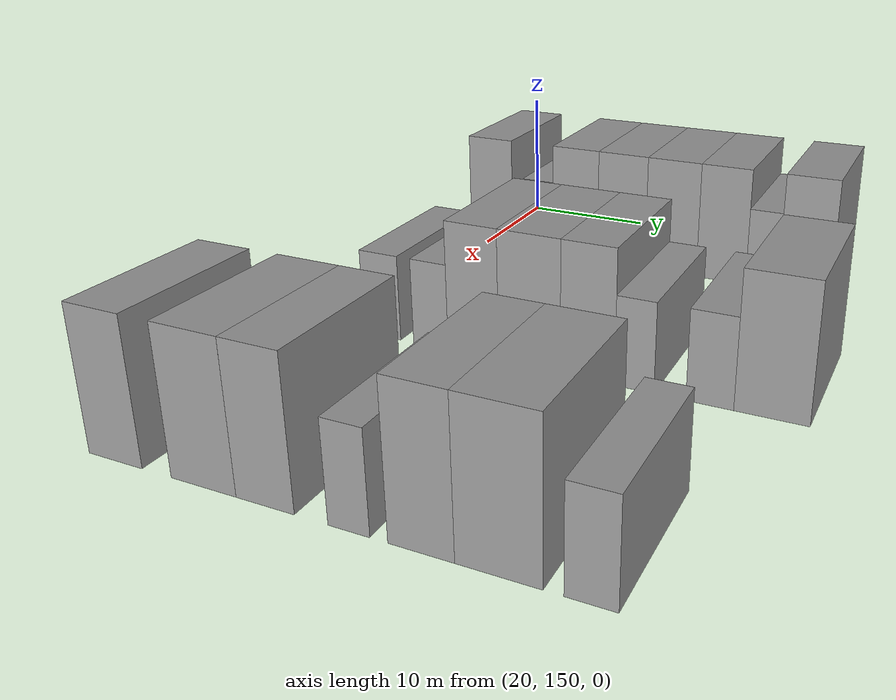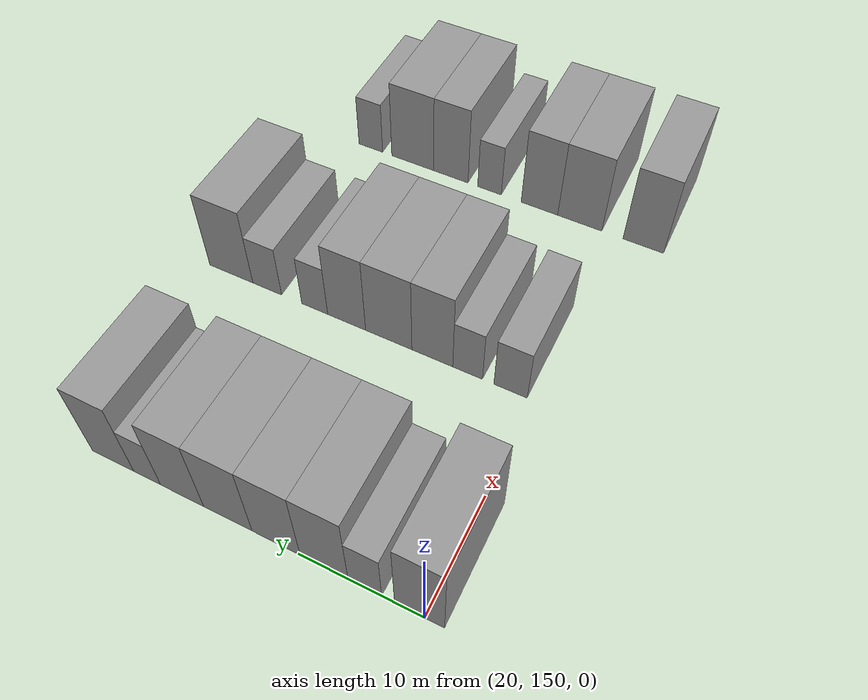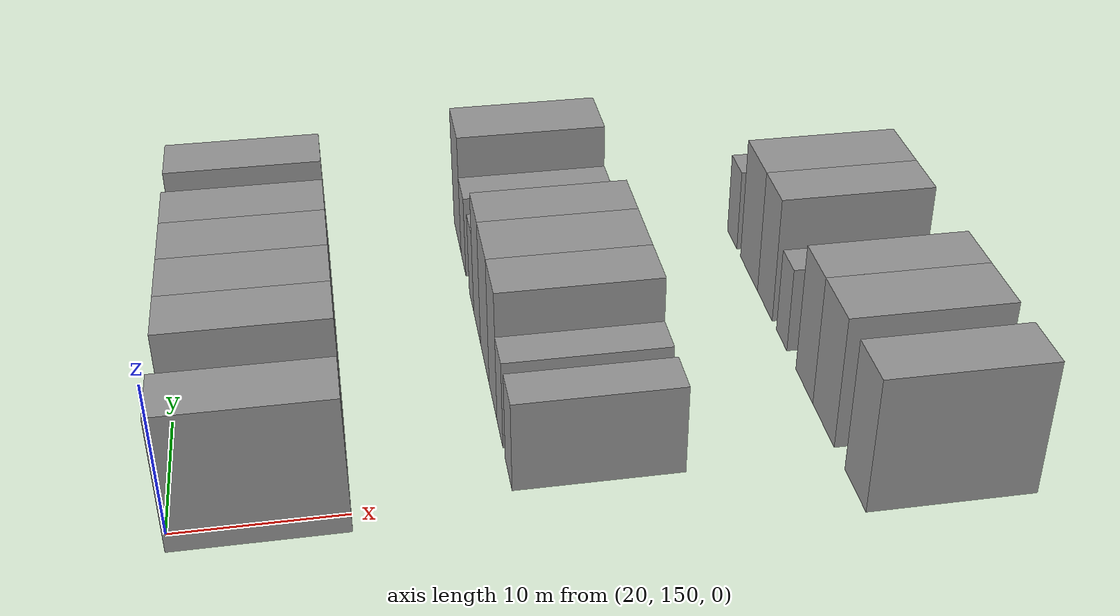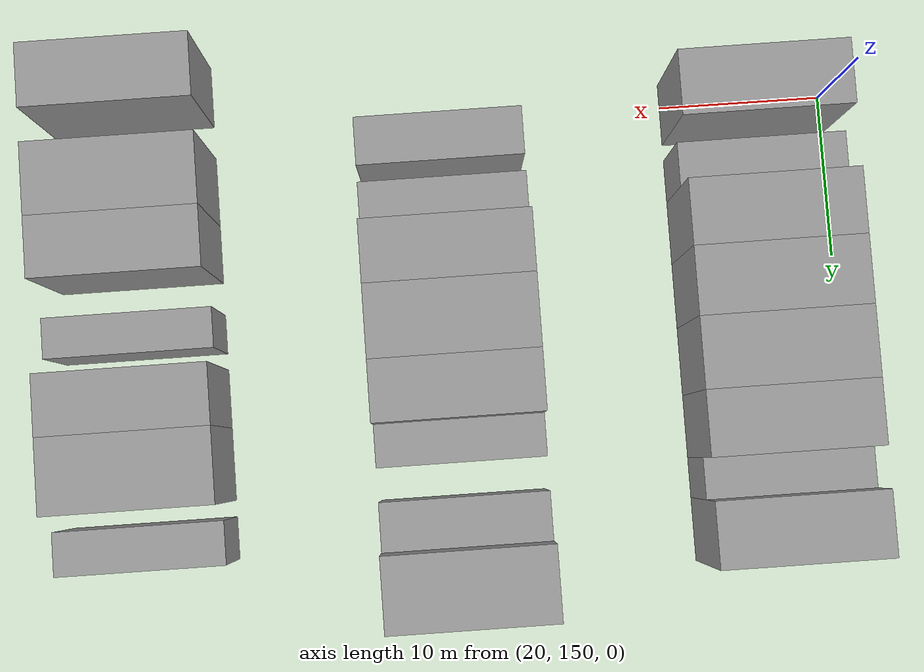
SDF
<sdf version="1.6">
 <world name="default">
  <model name="building_98">
   <static>1</static>
   <pose>25.0000 150.4215 0 0.000000 0.000000 0.000000</pose>
   <link name="link">
    <pose>0 0 4.50 0 0 0</pose>
    <collision name="collision"><geometry><box><size>10.0000 3.8236 9.0000</size></box></geometry></collision>
    <visual name="visual">
     <cast_shadows>0</cast_shadows>
     <geometry><box><size>10.0000 3.8236 9.0000</size></box></geometry>
     <material>
      <script>
       <uri>model://grey_wall/materials/scripts</uri>
       <uri>model://grey_wall/materials/textures</uri>
       <name>vrc/grey_wall</name>
      </script>
     </material>
    </visual>
   </link>
  </model>
  <model name="building_99">
   <static>1</static>
   <pose>25.0000 154.6576 0 0.000000 0.000000 0.000000</pose>
   <link name="link">
    <pose>0 0 3.00 0 0 0</pose>
    <collision name="collision"><geometry><box><size>10.0000 2.6486 6.0000</size></box></geometry></collision>
    <visual name="visual">
     <cast_shadows>0</cast_shadows>
     <geometry><box><size>10.0000 2.6486 6.0000</size></box></geometry>
     <material>
      <script>
       <uri>model://grey_wall/materials/scripts</uri>
       <uri>model://grey_wall/materials/textures</uri>
       <name>vrc/grey_wall</name>
      </script>
     </material>
    </visual>
   </link>
  </model>
  <model name="building_100">
   <static>1</static>
   <pose>25.0000 157.9257 0 0.000000 0.000000 0.000000</pose>
   <link name="link">
    <pose>0 0 4.50 0 0 0</pose>
    <collision name="collision"><geometry><box><size>10.0000 3.8875 9.0000</size></box></geometry></collision>
    <visual name="visual">
     <cast_shadows>0</cast_shadows>
     <geometry><box><size>10.0000 3.8875 9.0000</size></box></geometry>
     <material>
      <script>
       <uri>model://grey_wall/materials/scripts</uri>
       <uri>model://grey_wall/materials/textures</uri>
       <name>vrc/grey_wall</name>
      </script>
     </material>
    </visual>
   </link>
  </model>
  <model name="building_101">
   <static>1</static>
   <pose>25.0000 161.8803 0 0.000000 0.000000 0.000000</pose>
   <link name="link">
    <pose>0 0 4.50 0 0 0</pose>
    <collision name="collision"><geometry><box><size>10.0000 4.0218 9.0000</size></box></geometry></collision>
    <visual name="visual">
     <cast_shadows>0</cast_shadows>
     <geometry><box><size>10.0000 4.0218 9.0000</size></box></geometry>
     <material>
      <script>
       <uri>model://grey_wall/materials/scripts</uri>
       <uri>model://grey_wall/materials/textures</uri>
       <name>vrc/grey_wall</name>
      </script>
     </material>
    </visual>
   </link>
  </model>
  <model name="building_102">
   <static>1</static>
   <pose>25.0000 165.9857 0 0.000000 0.000000 0.000000</pose>
   <link name="link">
    <pose>0 0 4.50 0 0 0</pose>
    <collision name="collision"><geometry><box><size>10.0000 4.1890 9.0000</size></box></geometry></collision>
    <visual name="visual">
     <cast_shadows>0</cast_shadows>
     <geometry><box><size>10.0000 4.1890 9.0000</size></box></geometry>
     <material>
      <script>
       <uri>model://grey_wall/materials/scripts</uri>
       <uri>model://grey_wall/materials/textures</uri>
       <name>vrc/grey_wall</name>
      </script>
     </material>
    </visual>
   </link>
  </model>
  <model name="building_103">
   <static>1</static>
   <pose>25.0000 170.0028 0 0.000000 0.000000 0.000000</pose>
   <link name="link">
    <pose>0 0 4.50 0 0 0</pose>
    <collision name="collision"><geometry><box><size>10.0000 3.8452 9.0000</size></box></geometry></collision>
    <visual name="visual">
     <cast_shadows>0</cast_shadows>
     <geometry><box><size>10.0000 3.8452 9.0000</size></box></geometry>
     <material>
      <script>
       <uri>model://grey_wall/materials/scripts</uri>
       <uri>model://grey_wall/materials/textures</uri>
       <name>vrc/grey_wall</name>
      </script>
     </material>
    </visual>
   </link>
  </model>
  <model name="building_104">
   <static>1</static>
   <pose>25.0000 173.1505 0 0.000000 0.000000 0.000000</pose>
   <link name="link">
    <pose>0 0 3.00 0 0 0</pose>
    <collision name="collision"><geometry><box><size>10.0000 2.4502 6.0000</size></box></geometry></collision>
    <visual name="visual">
     <cast_shadows>0</cast_shadows>
     <geometry><box><size>10.0000 2.4502 6.0000</size></box></geometry>
     <material>
      <script>
       <uri>model://grey_wall/materials/scripts</uri>
       <uri>model://grey_wall/materials/textures</uri>
       <name>vrc/grey_wall</name>
      </script>
     </material>
    </visual>
   </link>
  </model>
  <model name="building_105">
   <static>1</static>
   <pose>25.0000 176.3116 0 0.000000 0.000000 0.000000</pose>
   <link name="link">
    <pose>0 0 4.50 0 0 0</pose>
    <collision name="collision"><geometry><box><size>10.0000 3.8720 9.0000</size></box></geometry></collision>
    <visual name="visual">
     <cast_shadows>0</cast_shadows>
     <geometry><box><size>10.0000 3.8720 9.0000</size></box></geometry>
     <material>
      <script>
       <uri>model://grey_wall/materials/scripts</uri>
       <uri>model://grey_wall/materials/textures</uri>
       <name>vrc/grey_wall</name>
      </script>
     </material>
    </visual>
   </link>
  </model>
  <model name="building_219">
   <static>1</static>
   <pose>44.0000 151.9204 0 0.000000 0.000000 0.000000</pose>
   <link name="link">
    <pose>0 0 3.00 0 0 0</pose>
    <collision name="collision"><geometry><box><size>10.0000 2.8877 6.0000</size></box></geometry></collision>
    <visual name="visual">
     <cast_shadows>0</cast_shadows>
     <geometry><box><size>10.0000 2.8877 6.0000</size></box></geometry>
     <material>
      <script>
       <uri>model://grey_wall/materials/scripts</uri>
       <uri>model://grey_wall/materials/textures</uri>
       <name>vrc/grey_wall</name>
      </script>
     </material>
    </visual>
   </link>
  </model>
  <model name="building_220">
   <static>1</static>
   <pose>44.0000 155.6818 0 0.000000 0.000000 0.000000</pose>
   <link name="link">
    <pose>0 0 3.00 0 0 0</pose>
    <collision name="collision"><geometry><box><size>10.0000 2.6350 6.0000</size></box></geometry></collision>
    <visual name="visual">
     <cast_shadows>0</cast_shadows>
     <geometry><box><size>10.0000 2.6350 6.0000</size></box></geometry>
     <material>
      <script>
       <uri>model://grey_wall/materials/scripts</uri>
       <uri>model://grey_wall/materials/textures</uri>
       <name>vrc/grey_wall</name>
      </script>
     </material>
    </visual>
   </link>
  </model>
  <model name="building_221">
   <static>1</static>
   <pose>44.0000 158.8513 0 0.000000 0.000000 0.000000</pose>
   <link name="link">
    <pose>0 0 4.50 0 0 0</pose>
    <collision name="collision"><geometry><box><size>10.0000 3.7040 9.0000</size></box></geometry></collision>
    <visual name="visual">
     <cast_shadows>0</cast_shadows>
     <geometry><box><size>10.0000 3.7040 9.0000</size></box></geometry>
     <material>
      <script>
       <uri>model://grey_wall/materials/scripts</uri>
       <uri>model://grey_wall/materials/textures</uri>
       <name>vrc/grey_wall</name>
      </script>
     </material>
    </visual>
   </link>
  </model>
  <model name="building_222">
   <static>1</static>
   <pose>44.0000 162.8628 0 0.000000 0.000000 0.000000</pose>
   <link name="link">
    <pose>0 0 4.50 0 0 0</pose>
    <collision name="collision"><geometry><box><size>10.0000 4.3189 9.0000</size></box></geometry></collision>
    <visual name="visual">
     <cast_shadows>0</cast_shadows>
     <geometry><box><size>10.0000 4.3189 9.0000</size></box></geometry>
     <material>
      <script>
       <uri>model://grey_wall/materials/scripts</uri>
       <uri>model://grey_wall/materials/textures</uri>
       <name>vrc/grey_wall</name>
      </script>
     </material>
    </visual>
   </link>
  </model>
  <model name="building_223">
   <static>1</static>
   <pose>44.0000 166.8400 0 0.000000 0.000000 0.000000</pose>
   <link name="link">
    <pose>0 0 4.50 0 0 0</pose>
    <collision name="collision"><geometry><box><size>10.0000 3.6355 9.0000</size></box></geometry></collision>
    <visual name="visual">
     <cast_shadows>0</cast_shadows>
     <geometry><box><size>10.0000 3.6355 9.0000</size></box></geometry>
     <material>
      <script>
       <uri>model://grey_wall/materials/scripts</uri>
       <uri>model://grey_wall/materials/textures</uri>
       <name>vrc/grey_wall</name>
      </script>
     </material>
    </visual>
   </link>
  </model>
  <model name="building_224">
   <static>1</static>
   <pose>44.0000 169.9285 0 0.000000 0.000000 0.000000</pose>
   <link name="link">
    <pose>0 0 3.00 0 0 0</pose>
    <collision name="collision"><geometry><box><size>10.0000 2.5414 6.0000</size></box></geometry></collision>
    <visual name="visual">
     <cast_shadows>0</cast_shadows>
     <geometry><box><size>10.0000 2.5414 6.0000</size></box></geometry>
     <material>
      <script>
       <uri>model://grey_wall/materials/scripts</uri>
       <uri>model://grey_wall/materials/textures</uri>
       <name>vrc/grey_wall</name>
      </script>
     </material>
    </visual>
   </link>
  </model>
  <model name="building_225">
   <static>1</static>
   <pose>44.0000 174.6555 0 0.000000 0.000000 0.000000</pose>
   <link name="link">
    <pose>0 0 3.00 0 0 0</pose>
    <collision name="collision"><geometry><box><size>10.0000 2.9126 6.0000</size></box></geometry></collision>
    <visual name="visual">
     <cast_shadows>0</cast_shadows>
     <geometry><box><size>10.0000 2.9126 6.0000</size></box></geometry>
     <material>
      <script>
       <uri>model://grey_wall/materials/scripts</uri>
       <uri>model://grey_wall/materials/textures</uri>
       <name>vrc/grey_wall</name>
      </script>
     </material>
    </visual>
   </link>
  </model>
  <model name="building_226">
   <static>1</static>
   <pose>44.0000 178.3353 0 0.000000 0.000000 0.000000</pose>
   <link name="link">
    <pose>0 0 4.50 0 0 0</pose>
    <collision name="collision"><geometry><box><size>10.0000 4.4472 9.0000</size></box></geometry></collision>
    <visual name="visual">
     <cast_shadows>0</cast_shadows>
     <geometry><box><size>10.0000 4.4472 9.0000</size></box></geometry>
     <material>
      <script>
       <uri>model://grey_wall/materials/scripts</uri>
       <uri>model://grey_wall/materials/textures</uri>
       <name>vrc/grey_wall</name>
      </script>
     </material>
    </visual>
   </link>
  </model>
  <model name="building_339">
   <static>1</static>
   <pose>63.0000 147.3282 0 0.000000 0.000000 0.000000</pose>
   <link name="link">
    <pose>0 0 4.50 0 0 0</pose>
    <collision name="collision"><geometry><box><size>10.0000 3.7838 9.0000</size></box></geometry></collision>
    <visual name="visual">
     <cast_shadows>0</cast_shadows>
     <geometry><box><size>10.0000 3.7838 9.0000</size></box></geometry>
     <material>
      <script>
       <uri>model://grey_wall/materials/scripts</uri>
       <uri>model://grey_wall/materials/textures</uri>
       <name>vrc/grey_wall</name>
      </script>
     </material>
    </visual>
   </link>
  </model>
  <model name="building_340">
   <static>1</static>
   <pose>63.0000 153.3513 0 0.000000 0.000000 0.000000</pose>
   <link name="link">
    <pose>0 0 4.50 0 0 0</pose>
    <collision name="collision"><geometry><box><size>10.0000 4.2625 9.0000</size></box></geometry></collision>
    <visual name="visual">
     <cast_shadows>0</cast_shadows>
     <geometry><box><size>10.0000 4.2625 9.0000</size></box></geometry>
     <material>
      <script>
       <uri>model://grey_wall/materials/scripts</uri>
       <uri>model://grey_wall/materials/textures</uri>
       <name>vrc/grey_wall</name>
      </script>
     </material>
    </visual>
   </link>
  </model>
  <model name="building_341">
   <static>1</static>
   <pose>63.0000 157.2907 0 0.000000 0.000000 0.000000</pose>
   <link name="link">
    <pose>0 0 4.50 0 0 0</pose>
    <collision name="collision"><geometry><box><size>10.0000 3.6162 9.0000</size></box></geometry></collision>
    <visual name="visual">
     <cast_shadows>0</cast_shadows>
     <geometry><box><size>10.0000 3.6162 9.0000</size></box></geometry>
     <material>
      <script>
       <uri>model://grey_wall/materials/scripts</uri>
       <uri>model://grey_wall/materials/textures</uri>
       <name>vrc/grey_wall</name>
      </script>
     </material>
    </visual>
   </link>
  </model>
  <model name="building_342">
   <static>1</static>
   <pose>63.0000 162.3043 0 0.000000 0.000000 0.000000</pose>
   <link name="link">
    <pose>0 0 3.00 0 0 0</pose>
    <collision name="collision"><geometry><box><size>10.0000 2.4110 6.0000</size></box></geometry></collision>
    <visual name="visual">
     <cast_shadows>0</cast_shadows>
     <geometry><box><size>10.0000 2.4110 6.0000</size></box></geometry>
     <material>
      <script>
       <uri>model://grey_wall/materials/scripts</uri>
       <uri>model://grey_wall/materials/textures</uri>
       <name>vrc/grey_wall</name>
      </script>
     </material>
    </visual>
   </link>
  </model>
  <model name="building_343">
   <static>1</static>
   <pose>63.0000 166.3162 0 0.000000 0.000000 0.000000</pose>
   <link name="link">
    <pose>0 0 4.50 0 0 0</pose>
    <collision name="collision"><geometry><box><size>10.0000 3.6127 9.0000</size></box></geometry></collision>
    <visual name="visual">
     <cast_shadows>0</cast_shadows>
     <geometry><box><size>10.0000 3.6127 9.0000</size></box></geometry>
     <material>
      <script>
       <uri>model://grey_wall/materials/scripts</uri>
       <uri>model://grey_wall/materials/textures</uri>
       <name>vrc/grey_wall</name>
      </script>
     </material>
    </visual>
   </link>
  </model>
  <model name="building_344">
   <static>1</static>
   <pose>63.0000 170.3551 0 0.000000 0.000000 0.000000</pose>
   <link name="link">
    <pose>0 0 4.50 0 0 0</pose>
    <collision name="collision"><geometry><box><size>10.0000 4.4651 9.0000</size></box></geometry></collision>
    <visual name="visual">
     <cast_shadows>0</cast_shadows>
     <geometry><box><size>10.0000 4.4651 9.0000</size></box></geometry>
     <material>
      <script>
       <uri>model://grey_wall/materials/scripts</uri>
       <uri>model://grey_wall/materials/textures</uri>
       <name>vrc/grey_wall</name>
      </script>
     </material>
    </visual>
   </link>
  </model>
  <model name="building_345">
   <static>1</static>
   <pose>63.0000 174.8829 0 0.000000 0.000000 0.000000</pose>
   <link name="link">
    <pose>0 0 3.00 0 0 0</pose>
    <collision name="collision"><geometry><box><size>10.0000 2.5905 6.0000</size></box></geometry></collision>
    <visual name="visual">
     <cast_shadows>0</cast_shadows>
     <geometry><box><size>10.0000 2.5905 6.0000</size></box></geometry>
     <material>
      <script>
       <uri>model://grey_wall/materials/scripts</uri>
       <uri>model://grey_wall/materials/textures</uri>
       <name>vrc/grey_wall</name>
      </script>
     </material>
    </visual>
   </link>
  </model>
 </world>
</sdf>
